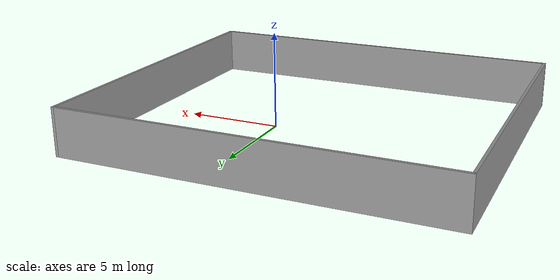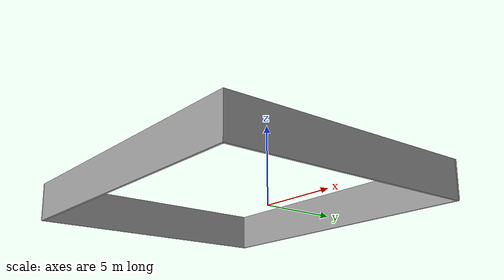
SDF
<?xml version='1.0'?>
<sdf version='1.6'>
  <model name='orazio_world'>
    <pose frame=''>-2.3048 -0.511043 0 0 -0 0</pose>
    <link name='Wall_11'>
      <collision name='Wall_11_Collision'>
        <geometry>
          <box>
            <size>20 0.15 2.5</size>
          </box>
        </geometry>
        <pose frame=''>0 0 1.25 0 -0 0</pose>
      </collision>
      <visual name='Wall_11_Visual'>
        <pose frame=''>0 0 1.25 0 -0 0</pose>
        <geometry>
          <box>
            <size>20 0.15 2.5</size>
          </box>
        </geometry>
        <material>
          <script>
            <uri>file://media/materials/scripts/gazebo.material</uri>
            <name>Gazebo/Grey</name>
          </script>
          <ambient>1 1 1 1</ambient>
        </material>
        <meta>
          <layer>0</layer>
        </meta>
      </visual>
      <pose frame=''>0 -8.425 0 0 -0 3.14159</pose>
    </link>
    <link name='Wall_12'>
      <collision name='Wall_12_Collision'>
        <geometry>
          <box>
            <size>17 0.15 2.5</size>
          </box>
        </geometry>
        <pose frame=''>0 0 1.25 0 -0 0</pose>
      </collision>
      <visual name='Wall_12_Visual'>
        <pose frame=''>0 0 1.25 0 -0 0</pose>
        <geometry>
          <box>
            <size>17 0.15 2.5</size>
          </box>
        </geometry>
        <material>
          <script>
            <uri>file://media/materials/scripts/gazebo.material</uri>
            <name>Gazebo/Grey</name>
          </script>
          <ambient>1 1 1 1</ambient>
        </material>
        <meta>
          <layer>0</layer>
        </meta>
      </visual>
      <pose frame=''>-9.925 0 0 0 -0 1.5708</pose>
    </link>
    <link name='Wall_8'>
      <collision name='Wall_8_Collision'>
        <geometry>
          <box>
            <size>17 0.15 2.5</size>
          </box>
        </geometry>
        <pose frame=''>0 0 1.25 0 -0 0</pose>
      </collision>
      <visual name='Wall_8_Visual'>
        <pose frame=''>0 0 1.25 0 -0 0</pose>
        <geometry>
          <box>
            <size>17 0.15 2.5</size>
          </box>
        </geometry>
        <material>
          <script>
            <uri>file://media/materials/scripts/gazebo.material</uri>
            <name>Gazebo/Grey</name>
          </script>
          <ambient>1 1 1 1</ambient>
        </material>
        <meta>
          <layer>0</layer>
        </meta>
      </visual>
      <pose frame=''>9.925 0 0 0 -0 1.5708</pose>
    </link>
    <link name='Wall_9'>
      <collision name='Wall_9_Collision'>
        <geometry>
          <box>
            <size>20 0.15 2.5</size>
          </box>
        </geometry>
        <pose frame=''>0 0 1.25 0 -0 0</pose>
      </collision>
      <visual name='Wall_9_Visual'>
        <pose frame=''>0 0 1.25 0 -0 0</pose>
        <geometry>
          <box>
            <size>20 0.15 2.5</size>
          </box>
        </geometry>
        <material>
          <script>
            <uri>file://media/materials/scripts/gazebo.material</uri>
            <name>Gazebo/Grey</name>
          </script>
          <ambient>1 1 1 1</ambient>
        </material>
        <meta>
          <layer>0</layer>
        </meta>
      </visual>
      <pose frame=''>0 8.425 0 0 -0 3.14159</pose>
    </link>
    <static>1</static>
  </model>
</sdf>
